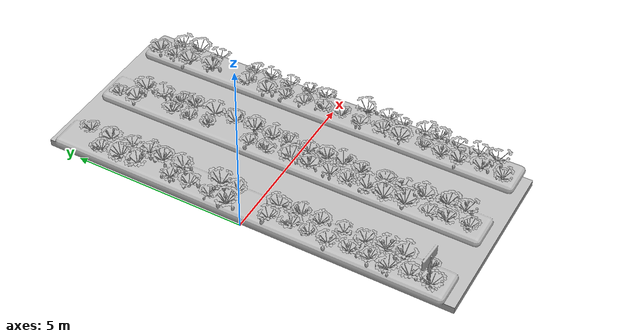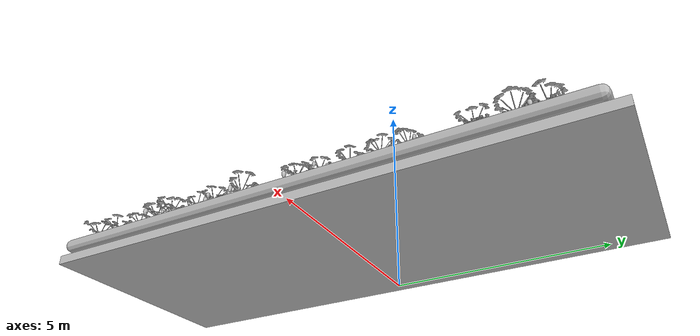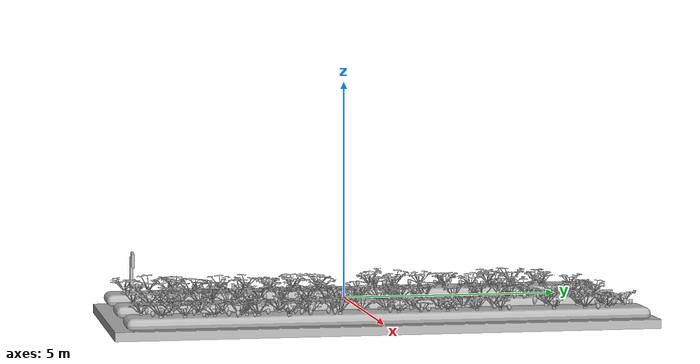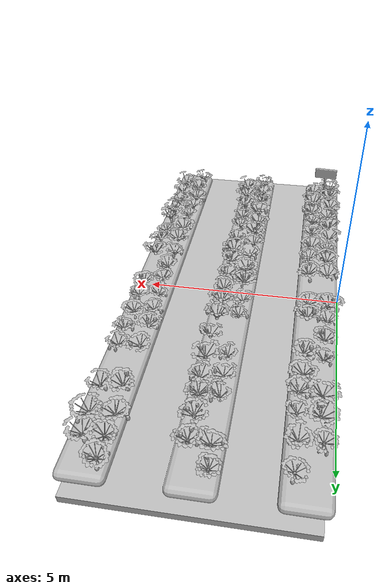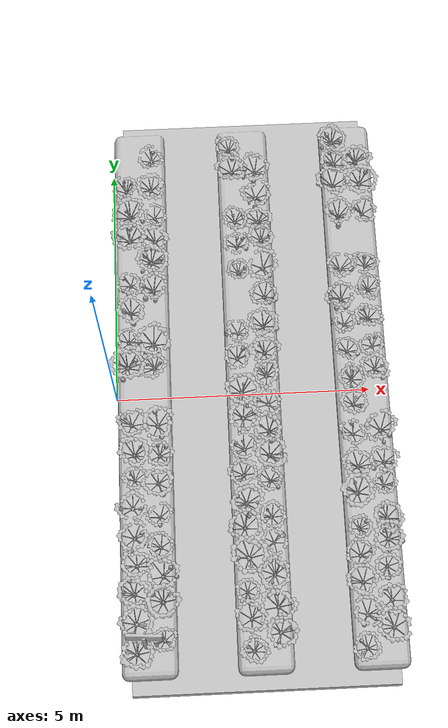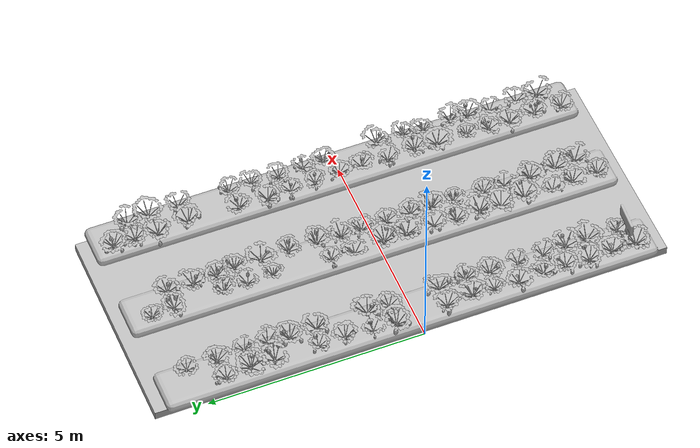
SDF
<?xml version="1.0"?>
<sdf version="1.10">
  <model name="strawberry_field_v3">
    <static>true</static>
    <link name="field_link">
      <collision name="field_collision_01">
        <pose>2.699999809 0.150000095 -0.100000001 0.000000000 0.000000000 0.000000000</pose>
        <geometry>
          <box><size>5.000000000 12.000000000 0.200000003</size></box>
        </geometry>
      </collision>
      <collision name="field_collision_02">
        <pose>0.637499988 0.150000095 0.140000001 0.000000000 0.000000000 0.000000000</pose>
        <geometry>
          <box><size>0.874999940 11.500000000 0.280000001</size></box>
        </geometry>
      </collision>
      <collision name="field_collision_03">
        <pose>2.700000048 0.150000095 0.140000001 0.000000000 0.000000000 0.000000000</pose>
        <geometry>
          <box><size>1.049999714 11.500000000 0.280000001</size></box>
        </geometry>
      </collision>
      <collision name="field_collision_04">
        <pose>4.850000381 0.150000095 0.140000001 0.000000000 0.000000000 0.000000000</pose>
        <geometry>
          <box><size>1.049999714 11.500000000 0.280000001</size></box>
        </geometry>
      </collision>
      <visual name="field_structure_visual">
        <geometry>
          <mesh>
            <uri>model://strawberry_field_v3/meshes/field_structure_v3.obj</uri>
          </mesh>
        </geometry>
      </visual>
      <visual name="field_plant_001">
        <pose>0.320633411 -5.137762070 0.291999996 -0.039024323 -0.001517374 -2.806272507</pose>
        <geometry>
          <mesh>
            <uri>model://strawberry_field_v3/meshes/plant_variant_15.obj</uri>
            <scale>1.072024107 1.100537181 1.416153908</scale>
          </mesh>
        </geometry>
      </visual>
      <visual name="field_plant_002">
        <pose>0.320211887 -4.576955795 0.291999996 -0.038435064 -0.015278942 -0.677393734</pose>
        <geometry>
          <mesh>
            <uri>model://strawberry_field_v3/meshes/plant_variant_01.obj</uri>
            <scale>1.094378829 1.068136454 1.319209933</scale>
          </mesh>
        </geometry>
      </visual>
      <visual name="field_plant_003">
        <pose>0.293572664 -4.015722275 0.291999996 -0.040510722 0.015572663 1.866826177</pose>
        <geometry>
          <mesh>
            <uri>model://strawberry_field_v3/meshes/plant_variant_16.obj</uri>
            <scale>1.075826287 1.088083982 1.357053638</scale>
          </mesh>
        </geometry>
      </visual>
      <visual name="field_plant_004">
        <pose>0.351743460 -3.473317385 0.291999996 -0.051471591 -0.000970344 -0.183475301</pose>
        <geometry>
          <mesh>
            <uri>model://strawberry_field_v3/meshes/plant_variant_13.obj</uri>
            <scale>0.983219266 0.990807831 1.142348051</scale>
          </mesh>
        </geometry>
      </visual>
      <visual name="field_plant_005">
        <pose>0.314839602 -2.930595875 0.291999996 0.046653017 -0.002885877 0.762526393</pose>
        <geometry>
          <mesh>
            <uri>model://strawberry_field_v3/meshes/plant_variant_24.obj</uri>
            <scale>1.026008487 0.996115506 1.177296519</scale>
          </mesh>
        </geometry>
      </visual>
      <visual name="field_plant_006">
        <pose>0.293889284 -2.340422630 0.291999996 0.052128483 0.053211313 2.547087908</pose>
        <geometry>
          <mesh>
            <uri>model://strawberry_field_v3/meshes/plant_variant_05.obj</uri>
            <scale>1.030707479 1.044065952 1.358797550</scale>
          </mesh>
        </geometry>
      </visual>
      <visual name="field_plant_007">
        <pose>0.337052345 -1.785432458 0.291999996 -0.066570483 0.032421302 0.027590480</pose>
        <geometry>
          <mesh>
            <uri>model://strawberry_field_v3/meshes/plant_variant_12.obj</uri>
            <scale>0.816731572 0.838112414 1.025308847</scale>
          </mesh>
        </geometry>
      </visual>
      <visual name="field_plant_008">
        <pose>0.342016935 -1.273898840 0.291999996 0.064934090 -0.017728889 1.797638416</pose>
        <geometry>
          <mesh>
            <uri>model://strawberry_field_v3/meshes/plant_variant_20.obj</uri>
            <scale>1.142134070 1.075604558 1.300963283</scale>
          </mesh>
        </geometry>
      </visual>
      <visual name="field_plant_009">
        <pose>0.299603462 -0.657721043 0.291999996 0.045145165 0.017819442 1.552111149</pose>
        <geometry>
          <mesh>
            <uri>model://strawberry_field_v3/meshes/plant_variant_14.obj</uri>
            <scale>0.977177978 0.971220016 1.201064587</scale>
          </mesh>
        </geometry>
      </visual>
      <visual name="field_plant_010">
        <pose>0.240983963 0.555702448 0.291999996 0.007851325 0.057549100 -2.114476919</pose>
        <geometry>
          <mesh>
            <uri>model://strawberry_field_v3/meshes/plant_variant_08.obj</uri>
            <scale>1.072513938 1.164670110 1.516654491</scale>
          </mesh>
        </geometry>
      </visual>
      <visual name="field_plant_011">
        <pose>0.268754244 1.092485070 0.291999996 -0.052947942 -0.028181979 1.018173218</pose>
        <geometry>
          <mesh>
            <uri>model://strawberry_field_v3/meshes/plant_variant_04.obj</uri>
            <scale>0.822432578 0.883062959 1.193078041</scale>
          </mesh>
        </geometry>
      </visual>
      <visual name="field_plant_012">
        <pose>0.316371679 1.726445794 0.291999996 0.061466467 0.007465492 1.180172682</pose>
        <geometry>
          <mesh>
            <uri>model://strawberry_field_v3/meshes/plant_variant_22.obj</uri>
            <scale>0.942885756 1.050608397 1.205057621</scale>
          </mesh>
        </geometry>
      </visual>
      <visual name="field_plant_013">
        <pose>0.328890562 2.341292381 0.291999996 0.045506161 0.062563628 -1.211369395</pose>
        <geometry>
          <mesh>
            <uri>model://strawberry_field_v3/meshes/plant_variant_06.obj</uri>
            <scale>0.930793345 0.880558133 1.193372250</scale>
          </mesh>
        </geometry>
      </visual>
      <visual name="field_plant_014">
        <pose>0.324987650 3.342002869 0.291999996 -0.059709743 -0.018135101 1.406375408</pose>
        <geometry>
          <mesh>
            <uri>model://strawberry_field_v3/meshes/plant_variant_02.obj</uri>
            <scale>1.120646834 1.195522070 1.324106216</scale>
          </mesh>
        </geometry>
      </visual>
      <visual name="field_plant_015">
        <pose>0.345541477 3.883794546 0.291999996 -0.074865915 -0.042582493 0.669866443</pose>
        <geometry>
          <mesh>
            <uri>model://strawberry_field_v3/meshes/plant_variant_10.obj</uri>
            <scale>1.140016079 1.081305981 1.417366385</scale>
          </mesh>
        </geometry>
      </visual>
      <visual name="field_plant_016">
        <pose>0.276962042 4.471618652 0.291999996 0.070759937 0.051214926 -2.851462841</pose>
        <geometry>
          <mesh>
            <uri>model://strawberry_field_v3/meshes/plant_variant_23.obj</uri>
            <scale>0.921386957 0.943502128 1.308684945</scale>
          </mesh>
        </geometry>
      </visual>
      <visual name="field_plant_017">
        <pose>0.839234829 -4.909469128 0.291999996 0.047978632 -0.011728718 -2.826824665</pose>
        <geometry>
          <mesh>
            <uri>model://strawberry_field_v3/meshes/plant_variant_07.obj</uri>
            <scale>0.852588236 0.831202865 1.121308327</scale>
          </mesh>
        </geometry>
      </visual>
      <visual name="field_plant_018">
        <pose>0.826880097 -4.179974079 0.291999996 -0.059114374 -0.061053459 2.297929764</pose>
        <geometry>
          <mesh>
            <uri>model://strawberry_field_v3/meshes/plant_variant_19.obj</uri>
            <scale>1.162744164 1.209443212 1.428757548</scale>
          </mesh>
        </geometry>
      </visual>
      <visual name="field_plant_019">
        <pose>0.843321800 -3.693405390 0.291999996 -0.041761521 -0.062420923 -0.032131974</pose>
        <geometry>
          <mesh>
            <uri>model://strawberry_field_v3/meshes/plant_variant_09.obj</uri>
            <scale>1.103702545 1.063246489 1.275771976</scale>
          </mesh>
        </geometry>
      </visual>
      <visual name="field_plant_020">
        <pose>0.811780810 -3.130272865 0.291999996 -0.072627157 0.033855267 2.345251083</pose>
        <geometry>
          <mesh>
            <uri>model://strawberry_field_v3/meshes/plant_variant_17.obj</uri>
            <scale>0.915727019 0.866674840 1.161338449</scale>
          </mesh>
        </geometry>
      </visual>
      <visual name="field_plant_021">
        <pose>0.811987281 -2.535339355 0.291999996 0.016293973 -0.054078985 -1.241596103</pose>
        <geometry>
          <mesh>
            <uri>model://strawberry_field_v3/meshes/plant_variant_18.obj</uri>
            <scale>0.817645192 0.887828648 1.132858634</scale>
          </mesh>
        </geometry>
      </visual>
      <visual name="field_plant_022">
        <pose>0.787307501 -1.860984445 0.291999996 0.059840780 0.060831629 0.294789702</pose>
        <geometry>
          <mesh>
            <uri>model://strawberry_field_v3/meshes/plant_variant_21.obj</uri>
            <scale>1.068729520 0.956307769 1.137978077</scale>
          </mesh>
        </geometry>
      </visual>
      <visual name="field_plant_023">
        <pose>0.828045726 -1.307363629 0.291999996 -0.015426510 0.056390196 -0.314106792</pose>
        <geometry>
          <mesh>
            <uri>model://strawberry_field_v3/meshes/plant_variant_03.obj</uri>
            <scale>0.859404624 0.954354882 1.186589003</scale>
          </mesh>
        </geometry>
      </visual>
      <visual name="field_plant_024">
        <pose>0.805346131 -0.683232903 0.291999996 -0.051033340 -0.014417507 -1.767155051</pose>
        <geometry>
          <mesh>
            <uri>model://strawberry_field_v3/meshes/plant_variant_13.obj</uri>
            <scale>1.170718431 1.088990569 1.227372169</scale>
          </mesh>
        </geometry>
      </visual>
      <visual name="field_plant_025">
        <pose>0.770777225 0.518236697 0.291999996 0.056598432 0.074078232 -2.941845894</pose>
        <geometry>
          <mesh>
            <uri>model://strawberry_field_v3/meshes/plant_variant_20.obj</uri>
            <scale>1.025943637 0.954007149 1.082262397</scale>
          </mesh>
        </geometry>
      </visual>
      <visual name="field_plant_026">
        <pose>0.758643031 1.027588487 0.291999996 -0.045537163 0.031144295 -0.770329714</pose>
        <geometry>
          <mesh>
            <uri>model://strawberry_field_v3/meshes/plant_variant_24.obj</uri>
            <scale>1.081413269 1.202772975 1.526950598</scale>
          </mesh>
        </geometry>
      </visual>
      <visual name="field_plant_027">
        <pose>0.782931447 2.201677561 0.291999996 0.024885884 0.050542772 2.763186216</pose>
        <geometry>
          <mesh>
            <uri>model://strawberry_field_v3/meshes/plant_variant_03.obj</uri>
            <scale>1.082591534 1.051052213 1.342447877</scale>
          </mesh>
        </geometry>
      </visual>
      <visual name="field_plant_028">
        <pose>0.756421328 2.832828522 0.291999996 -0.052420113 -0.069561966 -2.502909660</pose>
        <geometry>
          <mesh>
            <uri>model://strawberry_field_v3/meshes/plant_variant_08.obj</uri>
            <scale>1.063679218 1.046632290 1.300917268</scale>
          </mesh>
        </geometry>
      </visual>
      <visual name="field_plant_029">
        <pose>0.841207147 3.310695410 0.291999996 -0.013913229 0.045648493 -2.513859034</pose>
        <geometry>
          <mesh>
            <uri>model://strawberry_field_v3/meshes/plant_variant_02.obj</uri>
            <scale>1.066623569 1.030310631 1.156193137</scale>
          </mesh>
        </geometry>
      </visual>
      <visual name="field_plant_030">
        <pose>0.844432473 3.851028204 0.291999996 -0.070082322 0.068586960 -0.788223505</pose>
        <geometry>
          <mesh>
            <uri>model://strawberry_field_v3/meshes/plant_variant_18.obj</uri>
            <scale>0.895562768 0.805207670 1.045081258</scale>
          </mesh>
        </geometry>
      </visual>
      <visual name="field_plant_031">
        <pose>0.780515313 4.502907753 0.291999996 0.022333998 0.002677897 -1.865770221</pose>
        <geometry>
          <mesh>
            <uri>model://strawberry_field_v3/meshes/plant_variant_12.obj</uri>
            <scale>1.036307931 1.010560155 1.252905846</scale>
          </mesh>
        </geometry>
      </visual>
      <visual name="field_plant_032">
        <pose>0.808663249 5.180850506 0.291999996 -0.019277055 0.019135360 0.784555316</pose>
        <geometry>
          <mesh>
            <uri>model://strawberry_field_v3/meshes/plant_variant_05.obj</uri>
            <scale>0.885497570 0.963917792 1.092728138</scale>
          </mesh>
        </geometry>
      </visual>
      <visual name="field_plant_033">
        <pose>2.488573313 -5.177884579 0.291999996 -0.021027206 -0.040066164 -3.132934093</pose>
        <geometry>
          <mesh>
            <uri>model://strawberry_field_v3/meshes/plant_variant_15.obj</uri>
            <scale>0.917115390 0.866289914 1.252181292</scale>
          </mesh>
        </geometry>
      </visual>
      <visual name="field_plant_034">
        <pose>2.469247341 -4.576313019 0.291999996 -0.015954355 0.005168292 -0.478239357</pose>
        <geometry>
          <mesh>
            <uri>model://strawberry_field_v3/meshes/plant_variant_17.obj</uri>
            <scale>0.985761523 1.067652464 1.238542438</scale>
          </mesh>
        </geometry>
      </visual>
      <visual name="field_plant_035">
        <pose>2.409305334 -4.064064503 0.291999996 -0.038406961 0.026415283 0.308761060</pose>
        <geometry>
          <mesh>
            <uri>model://strawberry_field_v3/meshes/plant_variant_23.obj</uri>
            <scale>0.858439207 0.905881524 1.167541981</scale>
          </mesh>
        </geometry>
      </visual>
      <visual name="field_plant_036">
        <pose>2.469563484 -3.412086964 0.291999996 -0.021037854 -0.046376083 -1.921638727</pose>
        <geometry>
          <mesh>
            <uri>model://strawberry_field_v3/meshes/plant_variant_01.obj</uri>
            <scale>1.198367119 1.192213297 1.509563565</scale>
          </mesh>
        </geometry>
      </visual>
      <visual name="field_plant_037">
        <pose>2.415072918 -2.828857899 0.291999996 -0.061208721 0.024672162 2.933129072</pose>
        <geometry>
          <mesh>
            <uri>model://strawberry_field_v3/meshes/plant_variant_21.obj</uri>
            <scale>1.075727582 1.103379130 1.324002385</scale>
          </mesh>
        </geometry>
      </visual>
      <visual name="field_plant_038">
        <pose>2.467104673 -2.341687918 0.291999996 0.052389089 0.064297952 -2.389237642</pose>
        <geometry>
          <mesh>
            <uri>model://strawberry_field_v3/meshes/plant_variant_11.obj</uri>
            <scale>1.164038897 1.090767384 1.317389250</scale>
          </mesh>
        </geometry>
      </visual>
      <visual name="field_plant_039">
        <pose>2.438309431 -1.769814134 0.291999996 -0.037193183 0.029668741 2.533962488</pose>
        <geometry>
          <mesh>
            <uri>model://strawberry_field_v3/meshes/plant_variant_22.obj</uri>
            <scale>0.924374521 0.983337641 1.122141242</scale>
          </mesh>
        </geometry>
      </visual>
      <visual name="field_plant_040">
        <pose>2.475159645 -1.252120733 0.291999996 0.062240515 0.029371174 2.598111391</pose>
        <geometry>
          <mesh>
            <uri>model://strawberry_field_v3/meshes/plant_variant_09.obj</uri>
            <scale>0.881933868 0.963693857 1.272262692</scale>
          </mesh>
        </geometry>
      </visual>
      <visual name="field_plant_041">
        <pose>2.476382494 -0.602767944 0.291999996 -0.062762864 -0.064479150 -1.758258224</pose>
        <geometry>
          <mesh>
            <uri>model://strawberry_field_v3/meshes/plant_variant_07.obj</uri>
            <scale>1.110688925 1.127722383 1.283512950</scale>
          </mesh>
        </geometry>
      </visual>
      <visual name="field_plant_042">
        <pose>2.467822790 -0.073685929 0.291999996 0.048724495 0.074680664 -0.116206944</pose>
        <geometry>
          <mesh>
            <uri>model://strawberry_field_v3/meshes/plant_variant_10.obj</uri>
            <scale>1.107341051 1.128634572 1.368517995</scale>
          </mesh>
        </geometry>
      </visual>
      <visual name="field_plant_043">
        <pose>2.412190437 0.648736596 0.291999996 -0.041590609 0.050042592 -0.372561783</pose>
        <geometry>
          <mesh>
            <uri>model://strawberry_field_v3/meshes/plant_variant_14.obj</uri>
            <scale>0.844933510 0.965009689 1.065269589</scale>
          </mesh>
        </geometry>
      </visual>
      <visual name="field_plant_044">
        <pose>2.448808193 1.195949435 0.291999996 -0.017195120 0.044525195 -2.051211596</pose>
        <geometry>
          <mesh>
            <uri>model://strawberry_field_v3/meshes/plant_variant_04.obj</uri>
            <scale>0.773434222 0.882844210 1.100392461</scale>
          </mesh>
        </geometry>
      </visual>
      <visual name="field_plant_045">
        <pose>2.508199215 2.525650740 0.291999996 -0.008255282 0.043915648 0.422681242</pose>
        <geometry>
          <mesh>
            <uri>model://strawberry_field_v3/meshes/plant_variant_19.obj</uri>
            <scale>0.831597447 0.836080492 1.131294608</scale>
          </mesh>
        </geometry>
      </visual>
      <visual name="field_plant_046">
        <pose>2.509592772 3.117294550 0.291999996 0.031767040 -0.027313942 2.312622547</pose>
        <geometry>
          <mesh>
            <uri>model://strawberry_field_v3/meshes/plant_variant_06.obj</uri>
            <scale>0.905627072 0.965435147 1.288330793</scale>
          </mesh>
        </geometry>
      </visual>
      <visual name="field_plant_047">
        <pose>2.485638618 3.689554453 0.291999996 0.070996895 -0.021417519 0.551254988</pose>
        <geometry>
          <mesh>
            <uri>model://strawberry_field_v3/meshes/plant_variant_02.obj</uri>
            <scale>0.900795758 0.934152424 1.277928352</scale>
          </mesh>
        </geometry>
      </visual>
      <visual name="field_plant_048">
        <pose>2.471810102 4.841697216 0.291999996 -0.016916839 0.071780756 2.933835030</pose>
        <geometry>
          <mesh>
            <uri>model://strawberry_field_v3/meshes/plant_variant_13.obj</uri>
            <scale>1.099948049 0.973207057 1.324559212</scale>
          </mesh>
        </geometry>
      </visual>
      <visual name="field_plant_049">
        <pose>2.420594692 5.364883900 0.291999996 0.024858857 -0.006987339 0.617638886</pose>
        <geometry>
          <mesh>
            <uri>model://strawberry_field_v3/meshes/plant_variant_15.obj</uri>
            <scale>0.834822714 0.939915478 1.154236197</scale>
          </mesh>
        </geometry>
      </visual>
      <visual name="field_plant_050">
        <pose>2.994986296 -4.855542660 0.291999996 -0.072503999 -0.072105654 -1.906750917</pose>
        <geometry>
          <mesh>
            <uri>model://strawberry_field_v3/meshes/plant_variant_07.obj</uri>
            <scale>1.095107913 1.041294575 1.388713360</scale>
          </mesh>
        </geometry>
      </visual>
      <visual name="field_plant_051">
        <pose>2.973828077 -4.371832371 0.291999996 0.032783899 -0.008636081 0.242117509</pose>
        <geometry>
          <mesh>
            <uri>model://strawberry_field_v3/meshes/plant_variant_17.obj</uri>
            <scale>1.095334888 1.155926466 1.394659758</scale>
          </mesh>
        </geometry>
      </visual>
      <visual name="field_plant_052">
        <pose>2.940542221 -3.749866247 0.291999996 -0.050047953 0.071810894 2.928029537</pose>
        <geometry>
          <mesh>
            <uri>model://strawberry_field_v3/meshes/plant_variant_10.obj</uri>
            <scale>0.981914818 1.050547957 1.278333545</scale>
          </mesh>
        </geometry>
      </visual>
      <visual name="field_plant_053">
        <pose>2.952363968 -3.129052401 0.291999996 -0.023949722 -0.052577466 1.703923345</pose>
        <geometry>
          <mesh>
            <uri>model://strawberry_field_v3/meshes/plant_variant_04.obj</uri>
            <scale>0.910847485 0.884167492 1.018841386</scale>
          </mesh>
        </geometry>
      </visual>
      <visual name="field_plant_054">
        <pose>2.932086706 -2.626328468 0.291999996 -0.063829042 -0.016812921 -1.634547114</pose>
        <geometry>
          <mesh>
            <uri>model://strawberry_field_v3/meshes/plant_variant_20.obj</uri>
            <scale>0.961333513 0.891247690 1.161758780</scale>
          </mesh>
        </geometry>
      </visual>
      <visual name="field_plant_055">
        <pose>2.945948362 -1.911693454 0.291999996 -0.001387198 0.043767996 -2.061340570</pose>
        <geometry>
          <mesh>
            <uri>model://strawberry_field_v3/meshes/plant_variant_03.obj</uri>
            <scale>0.812164843 0.892177820 1.243199706</scale>
          </mesh>
        </geometry>
      </visual>
      <visual name="field_plant_056">
        <pose>2.955128908 -1.392736077 0.291999996 0.000164616 -0.069689825 1.652206659</pose>
        <geometry>
          <mesh>
            <uri>model://strawberry_field_v3/meshes/plant_variant_23.obj</uri>
            <scale>1.155648947 1.111565590 1.436701655</scale>
          </mesh>
        </geometry>
      </visual>
      <visual name="field_plant_057">
        <pose>2.967401505 -0.901268363 0.291999996 -0.010811040 -0.060581408 0.095343530</pose>
        <geometry>
          <mesh>
            <uri>model://strawberry_field_v3/meshes/plant_variant_11.obj</uri>
            <scale>1.027452350 1.119249582 1.286587477</scale>
          </mesh>
        </geometry>
      </visual>
      <visual name="field_plant_058">
        <pose>2.983785868 -0.333735853 0.291999996 -0.050956409 -0.070261754 2.104733467</pose>
        <geometry>
          <mesh>
            <uri>model://strawberry_field_v3/meshes/plant_variant_05.obj</uri>
            <scale>0.984939575 0.956252575 1.067599773</scale>
          </mesh>
        </geometry>
      </visual>
      <visual name="field_plant_059">
        <pose>2.970587254 0.261624217 0.291999996 -0.027084697 -0.048444808 0.854378045</pose>
        <geometry>
          <mesh>
            <uri>model://strawberry_field_v3/meshes/plant_variant_16.obj</uri>
            <scale>1.068207145 0.953829706 1.186172605</scale>
          </mesh>
        </geometry>
      </visual>
      <visual name="field_plant_060">
        <pose>2.952939749 0.749042153 0.291999996 0.037384622 -0.018619180 -0.059332196</pose>
        <geometry>
          <mesh>
            <uri>model://strawberry_field_v3/meshes/plant_variant_12.obj</uri>
            <scale>1.034150481 0.993000865 1.313221335</scale>
          </mesh>
        </geometry>
      </visual>
      <visual name="field_plant_061">
        <pose>2.965315104 1.326217175 0.291999996 -0.058549877 -0.041094031 2.269577026</pose>
        <geometry>
          <mesh>
            <uri>model://strawberry_field_v3/meshes/plant_variant_22.obj</uri>
            <scale>1.029776812 1.033740401 1.517490983</scale>
          </mesh>
        </geometry>
      </visual>
      <visual name="field_plant_062">
        <pose>3.011323690 1.969589114 0.291999996 0.038391106 0.066939242 -1.709550261</pose>
        <geometry>
          <mesh>
            <uri>model://strawberry_field_v3/meshes/plant_variant_14.obj</uri>
            <scale>0.866842330 0.943484366 1.268362880</scale>
          </mesh>
        </geometry>
      </visual>
      <visual name="field_plant_063">
        <pose>3.011313200 2.616792440 0.291999996 0.040155623 -0.002862410 -0.666140854</pose>
        <geometry>
          <mesh>
            <uri>model://strawberry_field_v3/meshes/plant_variant_18.obj</uri>
            <scale>1.087250113 1.205315232 1.323528051</scale>
          </mesh>
        </geometry>
      </visual>
      <visual name="field_plant_064">
        <pose>3.005017519 3.241057873 0.291999996 -0.008264921 -0.011021978 0.222493425</pose>
        <geometry>
          <mesh>
            <uri>model://strawberry_field_v3/meshes/plant_variant_19.obj</uri>
            <scale>0.949647546 0.997573197 1.362750530</scale>
          </mesh>
        </geometry>
      </visual>
      <visual name="field_plant_065">
        <pose>2.962279797 3.667445183 0.291999996 -0.029092368 0.036313180 0.901800632</pose>
        <geometry>
          <mesh>
            <uri>model://strawberry_field_v3/meshes/plant_variant_08.obj</uri>
            <scale>0.970668554 0.955235422 1.078857064</scale>
          </mesh>
        </geometry>
      </visual>
      <visual name="field_plant_066">
        <pose>2.932312489 4.228162766 0.291999996 -0.038516983 -0.040049344 -1.572364688</pose>
        <geometry>
          <mesh>
            <uri>model://strawberry_field_v3/meshes/plant_variant_09.obj</uri>
            <scale>1.005364060 1.036920309 1.293441772</scale>
          </mesh>
        </geometry>
      </visual>
      <visual name="field_plant_067">
        <pose>2.944473505 4.818930149 0.291999996 -0.005597695 -0.021551743 -0.234745353</pose>
        <geometry>
          <mesh>
            <uri>model://strawberry_field_v3/meshes/plant_variant_24.obj</uri>
            <scale>0.981004715 1.133800030 1.421467662</scale>
          </mesh>
        </geometry>
      </visual>
      <visual name="field_plant_068">
        <pose>4.579987049 -5.221268654 0.291999996 0.008621283 0.050891887 -2.869493723</pose>
        <geometry>
          <mesh>
            <uri>model://strawberry_field_v3/meshes/plant_variant_01.obj</uri>
            <scale>0.893234193 0.898667991 1.195507050</scale>
          </mesh>
        </geometry>
      </visual>
      <visual name="field_plant_069">
        <pose>4.622327328 -4.594408512 0.291999996 -0.056844939 -0.023472011 0.787759840</pose>
        <geometry>
          <mesh>
            <uri>model://strawberry_field_v3/meshes/plant_variant_06.obj</uri>
            <scale>1.007636309 0.987681210 1.298135996</scale>
          </mesh>
        </geometry>
      </visual>
      <visual name="field_plant_070">
        <pose>4.584495068 -3.975075722 0.291999996 0.054125674 0.057755787 -1.818651915</pose>
        <geometry>
          <mesh>
            <uri>model://strawberry_field_v3/meshes/plant_variant_21.obj</uri>
            <scale>1.007632017 0.999707401 1.225294828</scale>
          </mesh>
        </geometry>
      </visual>
      <visual name="field_plant_071">
        <pose>4.574137211 -3.465526104 0.291999996 0.065031864 -0.070021808 -1.093805075</pose>
        <geometry>
          <mesh>
            <uri>model://strawberry_field_v3/meshes/plant_variant_14.obj</uri>
            <scale>0.862235367 0.910689473 1.187235355</scale>
          </mesh>
        </geometry>
      </visual>
      <visual name="field_plant_072">
        <pose>4.582203865 -2.936382771 0.291999996 0.074898824 0.054280698 0.563176572</pose>
        <geometry>
          <mesh>
            <uri>model://strawberry_field_v3/meshes/plant_variant_19.obj</uri>
            <scale>0.856986821 0.865340233 1.168136477</scale>
          </mesh>
        </geometry>
      </visual>
      <visual name="field_plant_073">
        <pose>4.601029396 -2.227708101 0.291999996 0.031526342 -0.060013402 -1.986455679</pose>
        <geometry>
          <mesh>
            <uri>model://strawberry_field_v3/meshes/plant_variant_20.obj</uri>
            <scale>1.213389158 1.161876798 1.290320873</scale>
          </mesh>
        </geometry>
      </visual>
      <visual name="field_plant_074">
        <pose>4.645820618 -1.702367425 0.291999996 0.072564438 0.015843773 1.768971801</pose>
        <geometry>
          <mesh>
            <uri>model://strawberry_field_v3/meshes/plant_variant_12.obj</uri>
            <scale>1.018261909 1.074081540 1.257764816</scale>
          </mesh>
        </geometry>
      </visual>
      <visual name="field_plant_075">
        <pose>4.592477322 -1.029340744 0.291999996 -0.040650487 0.003070448 -1.934595823</pose>
        <geometry>
          <mesh>
            <uri>model://strawberry_field_v3/meshes/plant_variant_06.obj</uri>
            <scale>0.870359540 0.924494088 1.223617911</scale>
          </mesh>
        </geometry>
      </visual>
      <visual name="field_plant_076">
        <pose>4.646238327 -0.424737304 0.291999996 0.003260628 0.018440757 0.719926000</pose>
        <geometry>
          <mesh>
            <uri>model://strawberry_field_v3/meshes/plant_variant_01.obj</uri>
            <scale>0.966244042 0.917399168 1.124639392</scale>
          </mesh>
        </geometry>
      </visual>
      <visual name="field_plant_077">
        <pose>4.645133018 0.110038161 0.291999996 -0.043114305 0.053786848 -3.098430634</pose>
        <geometry>
          <mesh>
            <uri>model://strawberry_field_v3/meshes/plant_variant_10.obj</uri>
            <scale>0.841317058 0.940608621 1.052618504</scale>
          </mesh>
        </geometry>
      </visual>
      <visual name="field_plant_078">
        <pose>4.597489357 0.706469893 0.291999996 0.051401708 0.038361937 2.455142260</pose>
        <geometry>
          <mesh>
            <uri>model://strawberry_field_v3/meshes/plant_variant_13.obj</uri>
            <scale>0.896866083 0.805584371 1.102064848</scale>
          </mesh>
        </geometry>
      </visual>
      <visual name="field_plant_079">
        <pose>4.575053215 1.289300203 0.291999996 -0.019512106 -0.037620232 -2.352815866</pose>
        <geometry>
          <mesh>
            <uri>model://strawberry_field_v3/meshes/plant_variant_04.obj</uri>
            <scale>0.849096477 0.879466474 1.105547428</scale>
          </mesh>
        </geometry>
      </visual>
      <visual name="field_plant_080">
        <pose>4.551285744 1.848170161 0.291999996 -0.045499075 0.070717506 3.039731741</pose>
        <geometry>
          <mesh>
            <uri>model://strawberry_field_v3/meshes/plant_variant_03.obj</uri>
            <scale>1.028174162 0.994418323 1.211997628</scale>
          </mesh>
        </geometry>
      </visual>
      <visual name="field_plant_081">
        <pose>4.576692581 2.508737087 0.291999996 -0.074750580 -0.029086972 -0.680100262</pose>
        <geometry>
          <mesh>
            <uri>model://strawberry_field_v3/meshes/plant_variant_05.obj</uri>
            <scale>1.033594251 1.028283119 1.244469643</scale>
          </mesh>
        </geometry>
      </visual>
      <visual name="field_plant_082">
        <pose>4.610818386 3.700753927 0.291999996 -0.069484726 0.064640574 0.949407339</pose>
        <geometry>
          <mesh>
            <uri>model://strawberry_field_v3/meshes/plant_variant_22.obj</uri>
            <scale>0.983706117 1.058920264 1.452989221</scale>
          </mesh>
        </geometry>
      </visual>
      <visual name="field_plant_083">
        <pose>4.549748421 4.426755905 0.291999996 -0.025021791 -0.022376023 -1.861659765</pose>
        <geometry>
          <mesh>
            <uri>model://strawberry_field_v3/meshes/plant_variant_21.obj</uri>
            <scale>1.035755754 1.161110759 1.330930710</scale>
          </mesh>
        </geometry>
      </visual>
      <visual name="field_plant_084">
        <pose>4.605280876 4.946250439 0.291999996 -0.042528592 0.015062382 1.806489348</pose>
        <geometry>
          <mesh>
            <uri>model://strawberry_field_v3/meshes/plant_variant_16.obj</uri>
            <scale>1.064280510 1.011346340 1.168405533</scale>
          </mesh>
        </geometry>
      </visual>
      <visual name="field_plant_085">
        <pose>4.590920925 5.454280853 0.291999996 0.073802628 0.029596120 -2.778539896</pose>
        <geometry>
          <mesh>
            <uri>model://strawberry_field_v3/meshes/plant_variant_08.obj</uri>
            <scale>0.926697791 1.062458158 1.209198475</scale>
          </mesh>
        </geometry>
      </visual>
      <visual name="field_plant_086">
        <pose>5.102199554 -4.853037834 0.291999996 0.030755807 -0.014523514 3.031726837</pose>
        <geometry>
          <mesh>
            <uri>model://strawberry_field_v3/meshes/plant_variant_09.obj</uri>
            <scale>1.114767909 1.144867778 1.374225497</scale>
          </mesh>
        </geometry>
      </visual>
      <visual name="field_plant_087">
        <pose>5.098698616 -4.339474201 0.291999996 0.014744367 -0.014970155 2.323385954</pose>
        <geometry>
          <mesh>
            <uri>model://strawberry_field_v3/meshes/plant_variant_18.obj</uri>
            <scale>1.082272887 0.974407196 1.275613427</scale>
          </mesh>
        </geometry>
      </visual>
      <visual name="field_plant_088">
        <pose>5.057741642 -3.688139915 0.291999996 0.072880141 0.002506771 0.166847900</pose>
        <geometry>
          <mesh>
            <uri>model://strawberry_field_v3/meshes/plant_variant_23.obj</uri>
            <scale>0.978800058 0.898439109 1.047762752</scale>
          </mesh>
        </geometry>
      </visual>
      <visual name="field_plant_089">
        <pose>5.118390560 -3.166618347 0.291999996 -0.008816084 -0.046981324 -0.377228081</pose>
        <geometry>
          <mesh>
            <uri>model://strawberry_field_v3/meshes/plant_variant_02.obj</uri>
            <scale>1.124164939 1.101742268 1.278544188</scale>
          </mesh>
        </geometry>
      </visual>
      <visual name="field_plant_090">
        <pose>5.122976780 -2.751982212 0.291999996 -0.037524015 0.052556586 -2.916471004</pose>
        <geometry>
          <mesh>
            <uri>model://strawberry_field_v3/meshes/plant_variant_11.obj</uri>
            <scale>0.981806755 1.127335668 1.283907890</scale>
          </mesh>
        </geometry>
      </visual>
      <visual name="field_plant_091">
        <pose>5.111721992 -2.095850706 0.291999996 -0.063930817 0.057908252 -0.056154553</pose>
        <geometry>
          <mesh>
            <uri>model://strawberry_field_v3/meshes/plant_variant_07.obj</uri>
            <scale>0.811292827 0.856923223 1.047336459</scale>
          </mesh>
        </geometry>
      </visual>
      <visual name="field_plant_092">
        <pose>5.150241375 -1.636632919 0.291999996 -0.056653924 0.037413992 0.045004107</pose>
        <geometry>
          <mesh>
            <uri>model://strawberry_field_v3/meshes/plant_variant_24.obj</uri>
            <scale>0.977478385 0.958596706 1.134281397</scale>
          </mesh>
        </geometry>
      </visual>
      <visual name="field_plant_093">
        <pose>5.136908531 -0.983600497 0.291999996 0.048310917 -0.010918089 -2.078799486</pose>
        <geometry>
          <mesh>
            <uri>model://strawberry_field_v3/meshes/plant_variant_17.obj</uri>
            <scale>1.053870320 1.020213008 1.465463400</scale>
          </mesh>
        </geometry>
      </visual>
      <visual name="field_plant_094">
        <pose>5.122310638 0.305774510 0.291999996 0.024507890 0.020541504 0.904016912</pose>
        <geometry>
          <mesh>
            <uri>model://strawberry_field_v3/meshes/plant_variant_15.obj</uri>
            <scale>0.952484846 0.984759927 1.158783913</scale>
          </mesh>
        </geometry>
      </visual>
      <visual name="field_plant_095">
        <pose>5.109951973 0.794156671 0.291999996 -0.069847621 0.028745899 2.615136147</pose>
        <geometry>
          <mesh>
            <uri>model://strawberry_field_v3/meshes/plant_variant_06.obj</uri>
            <scale>0.867230594 0.871768415 0.958034933</scale>
          </mesh>
        </geometry>
      </visual>
      <visual name="field_plant_096">
        <pose>5.065530777 1.397891879 0.291999996 0.023426760 0.049853101 2.004520416</pose>
        <geometry>
          <mesh>
            <uri>model://strawberry_field_v3/meshes/plant_variant_16.obj</uri>
            <scale>0.963395298 0.989633918 1.051232219</scale>
          </mesh>
        </geometry>
      </visual>
      <visual name="field_plant_097">
        <pose>5.110590935 2.036248922 0.291999996 0.057803337 0.057165436 -1.326126337</pose>
        <geometry>
          <mesh>
            <uri>model://strawberry_field_v3/meshes/plant_variant_15.obj</uri>
            <scale>0.923293531 0.841646016 1.182450771</scale>
          </mesh>
        </geometry>
      </visual>
      <visual name="field_plant_098">
        <pose>5.093343735 2.561789989 0.291999996 -0.054651268 -0.054069024 0.177152738</pose>
        <geometry>
          <mesh>
            <uri>model://strawberry_field_v3/meshes/plant_variant_17.obj</uri>
            <scale>0.897008061 0.847231328 1.192237139</scale>
          </mesh>
        </geometry>
      </visual>
      <visual name="field_plant_099">
        <pose>5.111798763 3.758633852 0.291999996 -0.012465032 -0.069036089 2.827468872</pose>
        <geometry>
          <mesh>
            <uri>model://strawberry_field_v3/meshes/plant_variant_18.obj</uri>
            <scale>1.035340548 0.953596950 1.335637808</scale>
          </mesh>
        </geometry>
      </visual>
      <visual name="field_plant_100">
        <pose>5.103583336 4.456317902 0.291999996 -0.016327826 -0.042324793 2.527723789</pose>
        <geometry>
          <mesh>
            <uri>model://strawberry_field_v3/meshes/plant_variant_21.obj</uri>
            <scale>1.161912799 1.122920632 1.251142859</scale>
          </mesh>
        </geometry>
      </visual>
      <visual name="field_plant_101">
        <pose>5.054238319 4.973731518 0.291999996 0.011846015 -0.043975521 2.060174942</pose>
        <geometry>
          <mesh>
            <uri>model://strawberry_field_v3/meshes/plant_variant_19.obj</uri>
            <scale>1.059130073 1.193015695 1.397829890</scale>
          </mesh>
        </geometry>
      </visual>
    </link>
  </model>
</sdf>
